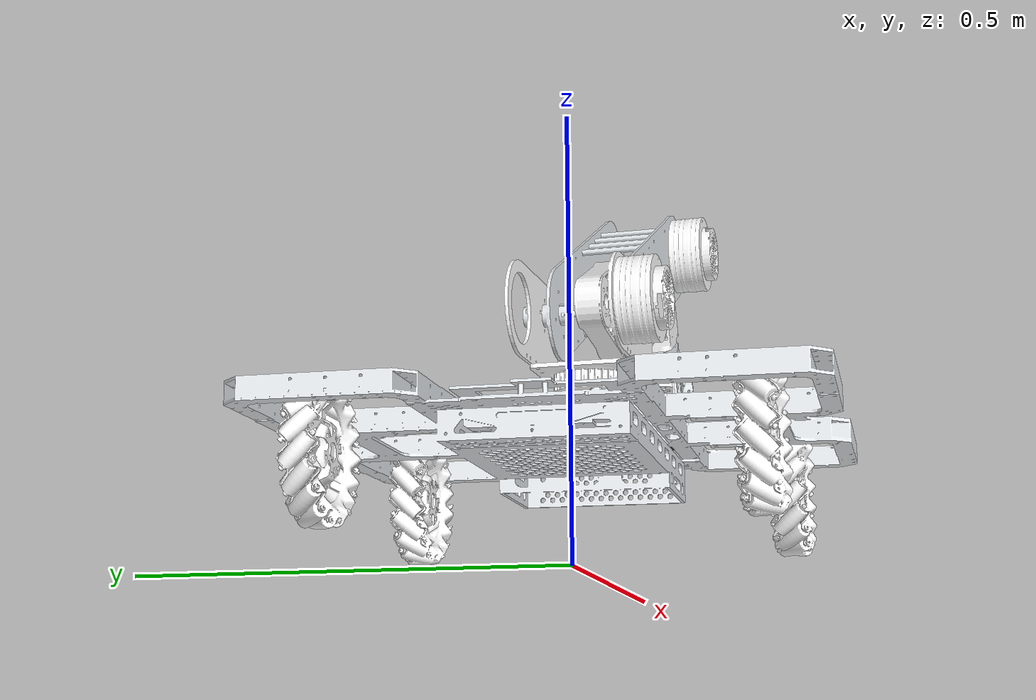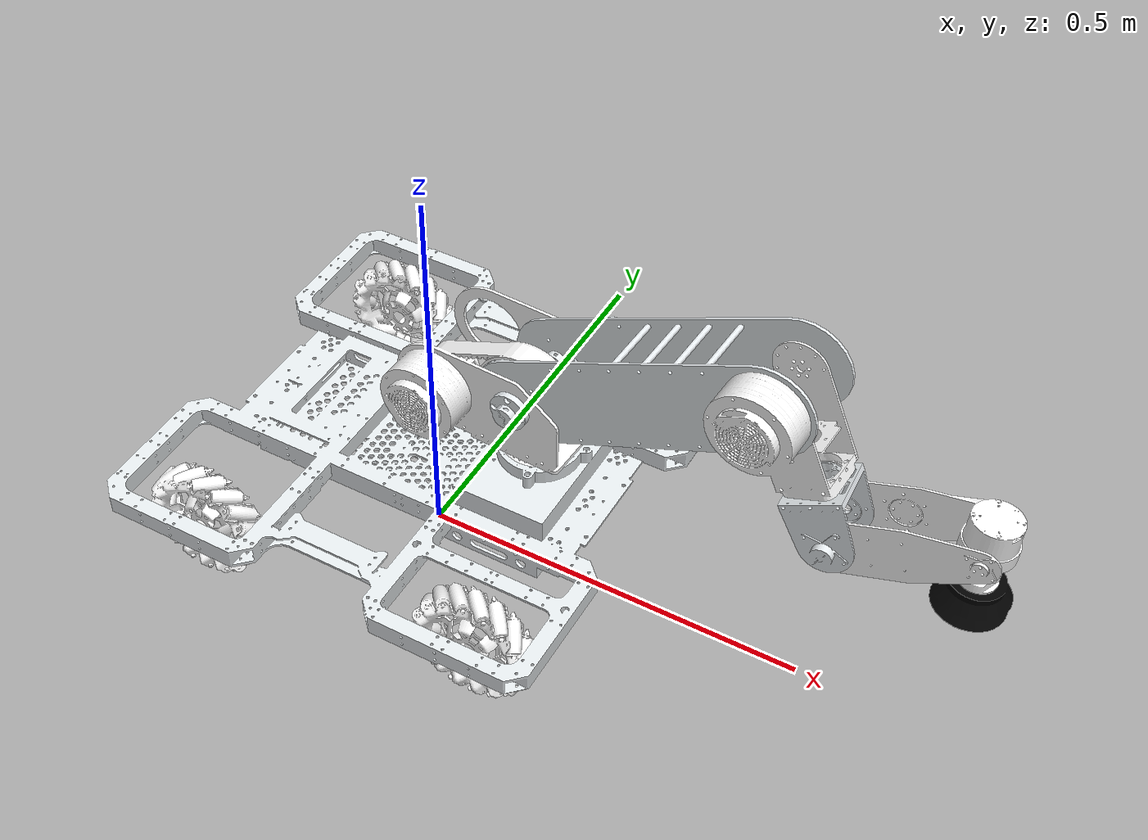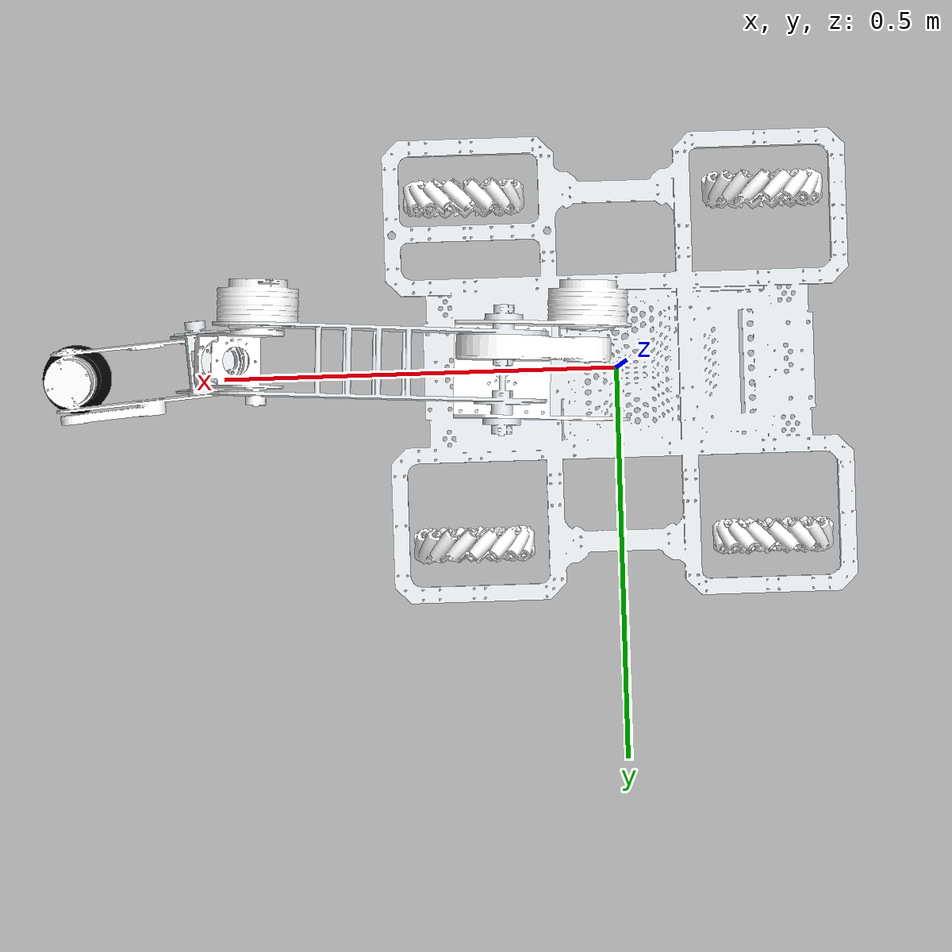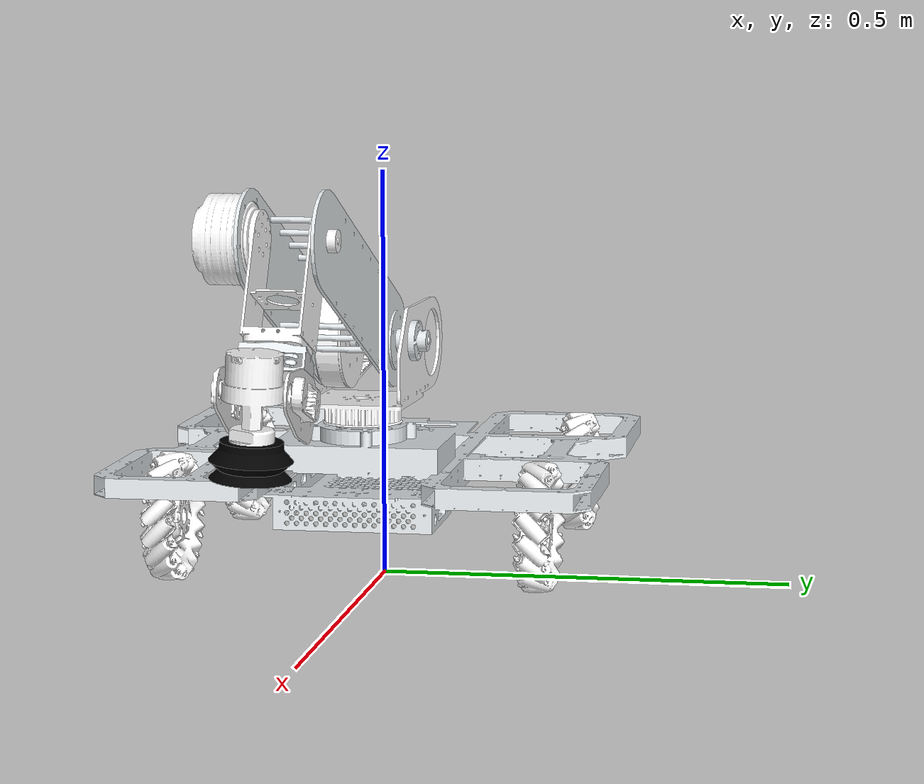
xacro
<?xml version="1.0"?>
<robot xmlns:xacro="http://www.ros.org/wiki/xacro" name="test_robot">
    <xacro:arg name="initial_positions_file" default="initial_positions.yaml" />

    <xacro:include filename="$(find test_robot)/urdf/test_robot.urdf" />
    <xacro:include filename="sensor_config.urdf" />

    <xacro:include filename="test_robot.ros2_control.xacro" />

    <gazebo>
        <xacro:include filename="test_robot.gazebo_config.urdf" />
    </gazebo>

    <xacro:test_robot_ros2_control name="GazeboSimSystem" initial_positions_file="$(arg initial_positions_file)"/>

</robot>

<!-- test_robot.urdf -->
<robot
  name="test_robot">
  <link name="dummy">
  </link>
  <joint name="dummy_joint" type="fixed">
    <parent link="dummy"/>
    <child link="robot_base_link"/>
    <origin
      xyz="0 0 0.1"
      rpy="0 0 0" />
  </joint>
  <link
    name="robot_base_link">
    <inertial>
      <origin
        xyz="0.0557861538209737 0.00187157090588302 0.02"
        rpy="0 0 0" />
      <mass
        value="25.0" />
      <inertia
        ixx="0.1004"
        ixy="-5.06911689925803E-05"
        ixz="7.28256113320338E-05"
        iyy="0.0800"
        iyz="1.14521311976476E-07"
        izz="0.1780"
      />
    </inertial>
    <visual>
      <origin
        xyz="0 0 0"
        rpy="0 0 0" />
      <geometry>
        <mesh
          filename="file://$(find test_robot)/meshes/robot_base_link.STL" />
      </geometry>
      <material
        name="">
        <color
          rgba="0.898039215686275 0.917647058823529 0.929411764705882 1" />
      </material>
    </visual>
    <collision>
      <origin
        xyz="0 0 0"
        rpy="0 0 0" />
      <geometry>
        <mesh
          filename="file://$(find test_robot)/meshes/robot_base_link.STL" />
      </geometry>
    </collision>
  </link>
  <link
    name="left_after_link">
    <inertial>
      <origin
        xyz="7.45870764998213E-07 9.4846191759073E-07 0.0354207175520367"
        rpy="0 0 0" />
      <mass
        value="0.192554371338558" />
      <inertia
        ixx="7.2420057965185E-05"
        ixy="1.14748969000156E-08"
        ixz="2.12639912439918E-08"
        iyy="7.24257690254219E-05"
        iyz="-1.66039781842761E-08"
        izz="0.000124467327931184" />
    </inertial>
    <visual>
      <origin
        xyz="0 0 0"
        rpy="0 0 0" />
      <geometry>
        <mesh
          filename="file://$(find test_robot)/meshes/left_after_link.STL" />
      </geometry>
      <material
        name="">
        <color
          rgba="1 1 1 1" />
      </material>
    </visual>
    <collision>
      <origin
        xyz="0 0 0"
        rpy="0 0 0" />
      <geometry>
        <mesh
          filename="file://$(find test_robot)/meshes/left_after_link.STL" />
      </geometry>
    </collision>
  </link>
  <joint
    name="left_after_joint"
    type="continuous">
    <origin
      xyz="-0.188535958808364 0.254600000000006 0"
      rpy="-1.5707963267949 0 -3.14159265358979" />
    <parent
      link="robot_base_link" />
    <child
      link="left_after_link" />
    <axis
      xyz="0 0 -1" />
  </joint>
  <link
    name="left_befor_link">
    <inertial>
      <origin
        xyz="3.04475208379174E-08 9.11192757294208E-07 0.0353869566933632"
        rpy="0 0 0" />
      <mass
        value="0.243221967341035" />
      <inertia
        ixx="7.56587664669174E-05"
        ixy="7.76172259100974E-10"
        ixz="2.69728261637892E-08"
        iyy="7.5682388462307E-05"
        iyz="-9.09097859665879E-10"
        izz="0.000127049391872566" />
    </inertial>
    <visual>
      <origin
        xyz="0 0 0"
        rpy="0 0 0" />
      <geometry>
        <mesh
          filename="file://$(find test_robot)/meshes/left_befor_link.STL" />
      </geometry>
      <material
        name="">
        <color
          rgba="1 1 1 1" />
      </material>
    </visual>
    <collision>
      <origin
        xyz="0 0 0"
        rpy="0 0 0" />
      <geometry>
        <mesh
          filename="file://$(find test_robot)/meshes/left_befor_link.STL" />
      </geometry>
    </collision>
  </link>
  <joint
    name="left_before_joint"
    type="continuous">
    <origin
      xyz="0.188535958808357 0.254599999999991 0"
      rpy="-1.5707963267949 0 3.14159265358978" />
    <parent
      link="robot_base_link" />
    <child
      link="left_befor_link" />
    <axis
      xyz="0 0 -1" />
  </joint>
  <link
    name="right_before_link">
    <inertial>
      <origin
        xyz="-7.45890070097399E-07 -9.48418968657258E-07 0.0354207175410472"
        rpy="0 0 0" />
      <mass
        value="0.192554371346189" />
      <inertia
        ixx="7.24200580012262E-05"
        ixy="1.14748162559678E-08"
        ixz="-2.12639916882875E-08"
        iyy="7.24257687316774E-05"
        iyz="1.66039882657349E-08"
        izz="0.000124467327673864" />
    </inertial>
    <visual>
      <origin
        xyz="0 0 0"
        rpy="0 0 0" />
      <geometry>
        <mesh
          filename="file://$(find test_robot)/meshes/right_before_link.STL" />
      </geometry>
      <material
        name="">
        <color
          rgba="1 1 1 1" />
      </material>
    </visual>
    <collision>
      <origin
        xyz="0 0 0"
        rpy="0 0 0" />
      <geometry>
        <mesh
          filename="file://$(find test_robot)/meshes/right_before_link.STL" />
      </geometry>
    </collision>
  </link>
  <joint
    name="right_before_joint"
    type="continuous">
    <origin
      xyz="0.188535958808356 -0.254599999999996 0"
      rpy="1.5707963267949 0 3.14159265358978" />
    <parent
      link="robot_base_link" />
    <child
      link="right_before_link" />
    <axis
      xyz="0 0 1" />
  </joint>
  <link
    name="right_after_link">
    <inertial>
      <origin
        xyz="0.0353869566931278 -9.11192757249973E-07 3.04475209489397E-08"
        rpy="0 0 0" />
      <mass
        value="0.243221967338972" />
      <inertia
        ixx="0.000127049391864388"
        ixy="9.09097858536065E-10"
        ixz="2.69728261619384E-08"
        iyy="7.56823884610534E-05"
        iyz="-7.7617538566618E-10"
        izz="7.5658766460408E-05" />
    </inertial>
    <visual>
      <origin
        xyz="0 0 0"
        rpy="0 0 0" />
      <geometry>
        <mesh
          filename="file://$(find test_robot)/meshes/right_after_link.STL" />
      </geometry>
      <material
        name="">
        <color
          rgba="1 1 1 1" />
      </material>
    </visual>
    <collision>
      <origin
        xyz="0 0 0"
        rpy="0 0 0" />
      <geometry>
        <mesh
          filename="file://$(find test_robot)/meshes/right_after_link.STL" />
      </geometry>
    </collision>
  </link>
  <joint
    name="right_after_joint"
    type="continuous">
    <origin
      xyz="-0.18853595880836 -0.254599999999995 0"
      rpy="1.5707963267949 0 1.5707963267949" />
    <parent
      link="robot_base_link" />
    <child
      link="right_after_link" />
    <axis
      xyz="1 0 0" />
  </joint>
  <link
    name="J1_link">
    <inertial>
      <origin
        xyz="-0.0285411106440401 0.0429168830524067 0.0773130252438191"
        rpy="0 0 0" />
      <mass
        value="1.23425990593155" />
      <inertia
        ixx="0.00245732440130179"
        ixy="-6.93539570307653E-05"
        ixz="-1.91831009373814E-06"
        iyy="0.0011034112193095"
        iyz="-3.76390124708488E-05"
        izz="0.00196037219555563" />
    </inertial>
    <visual>
      <origin
        xyz="0 0 0"
        rpy="0 0 0" />
      <geometry>
        <mesh
          filename="file://$(find test_robot)/meshes/J1_link.STL" />
      </geometry>
      <material
        name="">
        <color
          rgba="1 1 1 1" />
      </material>
    </visual>
    <collision>
      <origin
        xyz="0 0 0"
        rpy="0 0 0" />
      <geometry>
        <mesh
          filename="file://$(find test_robot)/meshes/J1_link.STL" />
      </geometry>
    </collision>
  </link>
  <joint
    name="J1_joint"
    type="revolute">
    <dynamics damping="0.1" friction="0.0"/>
    <origin
      xyz="0.147839868141125 0.00319255080494721 0.108472985824806"
      rpy="0 0 1.5707963267949" />
    <parent
      link="robot_base_link" />
    <child
      link="J1_link" />
    <axis
      xyz="0 0 1" />
    <limit
      lower="-1.1775"
      upper="1.1775"
      effort="4"
      velocity="4" />
  </joint>
  <link
    name="J2_link">
    <inertial>
      <origin
        xyz="-0.0917337229548938 -0.0443127031434655 0.0823683551400839"
        rpy="0 0 0" />
      <mass
        value="1.10586856399633" />
      <inertia
        ixx="0.00238529276204294"
        ixy="-0.00327671544661274"
        ixz="4.30054064959765E-08"
        iyy="0.0076203665612717"
        iyz="-3.33513763855491E-09"
        izz="0.00984076682272948" />
    </inertial>
    <visual>
      <origin
        xyz="0 0 0"
        rpy="0 0 0" />
      <geometry>
        <mesh
          filename="file://$(find test_robot)/meshes/J2_link.STL" />
      </geometry>
      <material
        name="">
        <color
          rgba="0.898039215686275 0.917647058823529 0.929411764705882 1" />
      </material>
    </visual>
    <collision>
      <origin
        xyz="0 0 0"
        rpy="0 0 0" />
      <geometry>
        <mesh
          filename="file://$(find test_robot)/meshes/J2_link.STL" />
      </geometry>
    </collision>
  </link>
  <joint
    name="J2_joint"
    type="revolute">
    <dynamics damping="0.1" friction="0.0"/>
    <origin
      xyz="0.0815435988166945 -0.00416701236161837 0.102"
      rpy="-1.5707963267949 0 1.51973909018581" />
    <parent
      link="J1_link" />
    <child
      link="J2_link" />
    <axis
      xyz="0 0 -1" />
    <limit
      lower="-3.14"
      upper="3.14"
      effort="4"
      velocity="4" />
  </joint>
  <link
    name="J3_link">
    <inertial>
      <origin
        xyz="-0.00808807953201074 0.0180218444035171 0.0958500349372893"
        rpy="0 0 0" />
      <mass
        value="0.538855476414292" />
      <inertia
        ixx="0.000440838175719664"
        ixy="3.69856802215964E-05"
        ixz="5.43707781309796E-09"
        iyy="0.000375565273656402"
        iyz="1.33476577208974E-08"
        izz="0.000633366401386816" />
    </inertial>
    <visual>
      <origin
        xyz="0 0 0"
        rpy="0 0 0" />
      <geometry>
        <mesh
          filename="file://$(find test_robot)/meshes/J3_link.STL" />
      </geometry>
      <material
        name="">
        <color
          rgba="1 1 1 1" />
      </material>
    </visual>
    <collision>
      <origin
        xyz="0 0 0"
        rpy="0 0 0" />
      <geometry>
        <mesh
          filename="file://$(find test_robot)/meshes/J3_link.STL" />
      </geometry>
    </collision>
  </link>
  <joint
    name="J3_joint"
    type="revolute">
    <dynamics damping="0.1" friction="0.0"/>
    <origin
      xyz="-0.297380428115131 -0.143055517104597 0.0288999999999909"
      rpy="0 0 0" />
    <parent
      link="J2_link" />
    <child
      link="J3_link" />
    <axis
      xyz="0 0 1" />
    <limit
      lower="-3.14"
      upper="3.14"
      effort="4"
      velocity="4" />
  </joint>
  <link
    name="J4_link">
    <inertial>
      <origin
        xyz="-0.00621217584256437 -0.000586466204593461 -0.0253608915174659"
        rpy="0 0 0" />
      <mass
        value="0.172878482049537" />
      <inertia
        ixx="9.74868545665381E-05"
        ixy="1.95087506354178E-06"
        ixz="-2.50946689261312E-07"
        iyy="7.57919100360528E-05"
        iyz="-5.67350689769877E-08"
        izz="9.54214366157793E-05" />
    </inertial>
    <visual>
      <origin
        xyz="0 0 0"
        rpy="0 0 0" />
      <geometry>
        <mesh
          filename="file://$(find test_robot)/meshes/J4_link.STL" />
      </geometry>
      <material
        name="">
        <color
          rgba="0.898039215686275 0.917647058823529 0.929411764705882 1" />
      </material>
    </visual>
    <collision>
      <origin
        xyz="0 0 0"
        rpy="0 0 0" />
      <geometry>
        <mesh
          filename="file://$(find test_robot)/meshes/J4_link.STL" />
      </geometry>
    </collision>
  </link>
  <joint
    name="J4_joint"
    type="continuous">
    <dynamics damping="0.1" friction="0.0"/>
    <origin
      xyz="-0.0520591601532436 0.1152913433183 0.0550000000000078"
      rpy="1.57079632679501 1.52425622041413 0.424137505817387" />
    <parent
      link="J3_link" />
    <child
      link="J4_link" />
    <axis
      xyz="0 0 1" />
  </joint>
  <link
    name="J5_link">
    <inertial>
      <origin
        xyz="0.0700683577980609 -0.0288571656768886 0.0306239926554916"
        rpy="0 0 0" />
      <mass
        value="0.18220557422278" />
      <inertia
        ixx="0.000109362011186696"
        ixy="0.000135300090868651"
        ixz="-1.4392919811699E-08"
        iyy="0.000382169190275597"
        iyz="5.87407201213818E-09"
        izz="0.000490748781800861" />
    </inertial>
    <visual>
      <origin
        xyz="0 0 0"
        rpy="0 0 0" />
      <geometry>
        <mesh
          filename="file://$(find test_robot)/meshes/J5_link.STL" />
      </geometry>
      <material
        name="">
        <color
          rgba="1 1 1 1" />
      </material>
    </visual>
    <collision>
      <origin
        xyz="0 0 0"
        rpy="0 0 0" />
      <geometry>
        <mesh
          filename="file://$(find test_robot)/meshes/J5_link.STL" />
      </geometry>
    </collision>
  </link>
  <joint
    name="J5_joint"
    type="revolute">
    <dynamics damping="0.1" friction="0.0"/>
    <origin
      xyz="0.0423315447474402 0.00378025386648639 -0.0600000000000362"
      rpy="1.5707963267949 -0.231927791500107 -1.48173147181141" />
    <parent
      link="J4_link" />
    <child
      link="J5_link" />
    <axis
      xyz="0 0 -1" />
    <limit
      lower="-3.14"
      upper="3.14"
      effort="4"
      velocity="4" />
  </joint>
  <link
    name="J6_link">
    <inertial>
      <origin
        xyz="-0.00413505814089754 -0.00484905879306041 0.0516128117682829"
        rpy="0 0 0" />
      <mass
        value="0.201020765205268" />
      <inertia
        ixx="6.26088013041597E-05"
        ixy="1.09928205527936E-05"
        ixz="5.14295008788505E-07"
        iyy="6.62221037873461E-05"
        iyz="-5.15644134121837E-07"
        izz="5.00847395439532E-05" />
    </inertial>
    <visual>
      <origin
        xyz="0 0 0"
        rpy="0 0 0" />
      <geometry>
        <mesh
          filename="file://$(find test_robot)/meshes/J6_link.STL" />
      </geometry>
      <material
        name="">
        <color
          rgba="1 1 1 1" />
      </material>
    </visual>
    <collision>
      <origin
        xyz="0 0 0"
        rpy="0 0 0" />
      <geometry>
        <mesh
          filename="file://$(find test_robot)/meshes/J6_link.STL" />
      </geometry>
    </collision>
  </link>
  <joint
    name="J6_joint"
    type="revolute">
    <dynamics damping="0.1" friction="0.0"/>
    <origin
      xyz="0.15026 -0.061881 -0.0155"
      rpy="0 0 0" />
    <parent
      link="J5_link" />
    <child
      link="J6_link" />
    <axis
      xyz="0 0 1" />
    <limit
      lower="-3.14"
      upper="3.14"
      effort="4"
      velocity="4" />
  </joint>
  <link
    name="J7_link">
    <inertial>
      <origin
        xyz="5.55111512312578E-17 1.11022302462516E-16 -0.00116219878612298"
        rpy="0 0 0" />
      <mass
        value="0.0597753057548309" />
      <inertia
        ixx="3.0537874170693E-05"
        ixy="4.22192984647065E-21"
        ixz="3.58955026817386E-21"
        iyy="3.0537874170693E-05"
        iyz="1.37642853928824E-21"
        izz="5.0172092133464E-05" />
    </inertial>
    <visual>
      <origin
        xyz="0 0 0"
        rpy="0 0 0" />
      <geometry>
        <mesh
          filename="file://$(find test_robot)/meshes/J7_link.STL" />
      </geometry>
      <material
        name="">
        <color
          rgba="0 0 0 1" />
      </material>
    </visual>
    <collision>
      <origin
        xyz="0 0 0"
        rpy="0 0 0" />
      <geometry>
        <mesh
          filename="file://$(find test_robot)/meshes/J7_link.STL" />
      </geometry>
    </collision>
  </link>
  <joint
    name="J7_joint"
    type="continuous">
    <dynamics damping="0.1" friction="0.0"/>
    <origin
      xyz="-0.039437 -0.046537 0.0516"
      rpy="-1.5708 1.5009 -0.70299" />
    <parent
      link="J6_link" />
    <child
      link="J7_link" />
    <axis
      xyz="0 0 1" />
  </joint>
</robot>

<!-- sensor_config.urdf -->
<robot name="test_robot">

  <link name="imu_sensor_link">
  </link>

  <joint name="imu_sensor_joint" type="fixed">
    <parent link="dummy"/>
    <child link="imu_sensor_link"/>
    <origin
      xyz="0 0 0"
      rpy="0 0 0" />
  </joint>

  <gazebo reference="imu_sensor_link">
    <sensor name="imu_sensor" type="imu">
      <always_on>1</always_on>
      <update_rate>1</update_rate>
      <visualize>true</visualize>
      <topic>test_robot/imu</topic>
    </sensor>
    <plugin filename="libignition-gazebo-imu-system.so"
            name="ignition::gazebo::systems::Imu">
    </plugin>
  </gazebo>

  <link name="lidar_sensor_link">
  </link>

  <link name="test_robot/dummy/gpu_lidar">
  </link>

  <joint name="lidar_sensor_res_joint" type="fixed">
    <parent link="lidar_sensor_link"/>
    <child link="test_robot/dummy/gpu_lidar"/>
    <origin
      xyz="0 0 0"
      rpy="0 0 0" />
  </joint>

  <joint name="lidar_sensor_joint" type="fixed">
    <parent link="dummy"/>
    <child link="lidar_sensor_link"/>
    <origin
      xyz="0 0 0.5"
      rpy="0 0 0" />
  </joint>

  <gazebo reference="lidar_sensor_link">
    <plugin filename="ignition-gazebo-sensors-system"
            name="ignition::gazebo::systems::Sensors">
        <render_engine>ogre2</render_engine>
    </plugin>
    <sensor name='gpu_lidar' type='gpu_lidar'>
      <pose relative_to="lidar_sensor_link">0 0 0 0 0 0</pose>
      <topic>test_robot/lidar</topic>
      <update_rate>10</update_rate>
        <ray>
          <scan>
              <horizontal>
                <samples>3000</samples>
                <resolution>1</resolution>
                <min_angle>-0.8</min_angle>
                <max_angle>0.8</max_angle>
              </horizontal>
              <vertical>
                <samples>100</samples>
                <resolution>1</resolution>
                <min_angle>-0.69066</min_angle>
                <max_angle>0.209066</max_angle>
              </vertical>
          </scan>
          <range>
              <min>0.08</min>
              <max>4.0</max>
              <resolution>0.01</resolution>
          </range>
        </ray>
        <alwaysOn>1</alwaysOn>
        <visualize>true</visualize>
    </sensor>
  </gazebo>

</robot>
